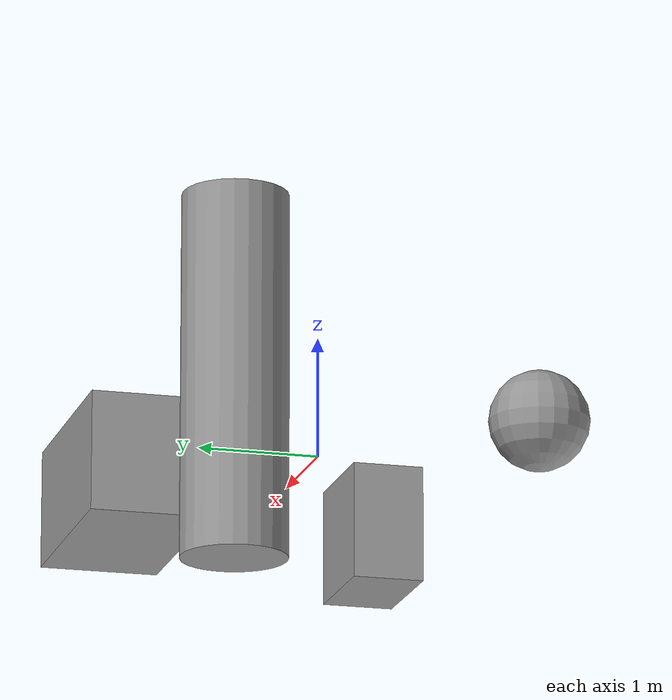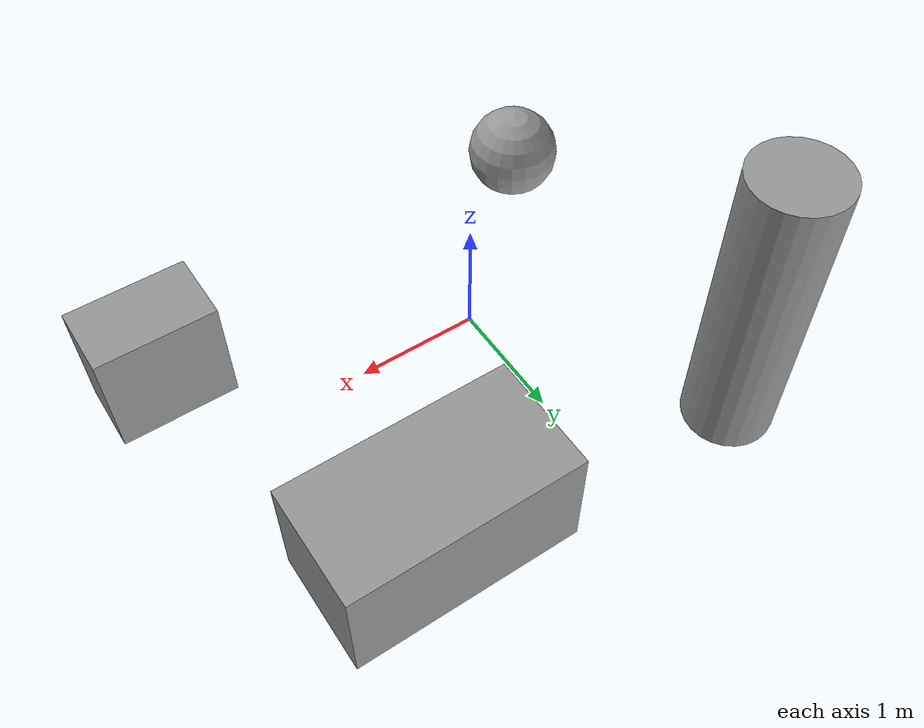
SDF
<?xml version='1.0'?>
<sdf version='1.7'>
  <model name='meu_mapa2'>
    <link name='link_0'>
      <inertial>
        <mass>1.91507</mass>
        <inertia>
          <ixx>0.319178</ixx>
          <ixy>0</ixy>
          <ixz>0</ixz>
          <iyy>0.74488</iyy>
          <iyz>0</iyz>
          <izz>0.74488</izz>
        </inertia>
        <pose>0 0 0 0 -0 0</pose>
      </inertial>
      <pose>1.21596 1.32594 0 0 -0 0</pose>
      <visual name='visual'>
        <pose>0 0 0 0 -0 0</pose>
        <geometry>
          <box>
            <size>1.91507 1 1</size>
          </box>
        </geometry>
        <material>
          <lighting>1</lighting>
          <script>
            <uri>file://media/materials/scripts/gazebo.material</uri>
            <name>Gazebo/Grey</name>
          </script>
          <shader type='pixel'/>
        </material>
        <transparency>0</transparency>
        <cast_shadows>1</cast_shadows>
      </visual>
      <collision name='collision'>
        <laser_retro>0</laser_retro>
        <max_contacts>10</max_contacts>
        <pose>0 0 0 0 -0 0</pose>
        <geometry>
          <box>
            <size>1.91507 1 1</size>
          </box>
        </geometry>
        <surface>
          <friction>
            <ode>
              <mu>1</mu>
              <mu2>1</mu2>
              <fdir1>0 0 0</fdir1>
              <slip1>0</slip1>
              <slip2>0</slip2>
            </ode>
            <torsional>
              <coefficient>1</coefficient>
              <patch_radius>0</patch_radius>
              <surface_radius>0</surface_radius>
              <use_patch_radius>1</use_patch_radius>
              <ode>
                <slip>0</slip>
              </ode>
            </torsional>
          </friction>
          <bounce>
            <restitution_coefficient>0</restitution_coefficient>
            <threshold>1e+06</threshold>
          </bounce>
          <contact>
            <collide_without_contact>0</collide_without_contact>
            <collide_without_contact_bitmask>1</collide_without_contact_bitmask>
            <collide_bitmask>1</collide_bitmask>
            <ode>
              <soft_cfm>0</soft_cfm>
              <soft_erp>0.2</soft_erp>
              <kp>1e+13</kp>
              <kd>1</kd>
              <max_vel>0.01</max_vel>
              <min_depth>0</min_depth>
            </ode>
            <bullet>
              <split_impulse>1</split_impulse>
              <split_impulse_penetration_threshold>-0.01</split_impulse_penetration_threshold>
              <soft_cfm>0</soft_cfm>
              <soft_erp>0.2</soft_erp>
              <kp>1e+13</kp>
              <kd>1</kd>
            </bullet>
          </contact>
        </surface>
      </collision>
    </link>
    <link name='link_1'>
      <inertial>
        <mass>2.07655</mass>
        <inertia>
          <ixx>1.57158</ixx>
          <ixy>0</ixy>
          <ixz>0</ixz>
          <iyy>1.57158</iyy>
          <iyz>0</iyz>
          <izz>0.184352</izz>
        </inertia>
        <pose>0 0 0 0 -0 0</pose>
      </inertial>
      <pose>-2.0404 1.2097 0 0 -0 0</pose>
      <visual name='visual'>
        <pose>0 0 0 0 -0 0</pose>
        <geometry>
          <cylinder>
            <radius>0.421374</radius>
            <length>2.9239</length>
          </cylinder>
        </geometry>
        <material>
          <lighting>1</lighting>
          <script>
            <uri>file://media/materials/scripts/gazebo.material</uri>
            <name>Gazebo/Grey</name>
          </script>
          <shader type='pixel'/>
        </material>
        <transparency>0</transparency>
        <cast_shadows>1</cast_shadows>
      </visual>
      <collision name='collision'>
        <laser_retro>0</laser_retro>
        <max_contacts>10</max_contacts>
        <pose>0 0 0 0 -0 0</pose>
        <geometry>
          <cylinder>
            <radius>0.421374</radius>
            <length>2.9239</length>
          </cylinder>
        </geometry>
        <surface>
          <friction>
            <ode>
              <mu>1</mu>
              <mu2>1</mu2>
              <fdir1>0 0 0</fdir1>
              <slip1>0</slip1>
              <slip2>0</slip2>
            </ode>
            <torsional>
              <coefficient>1</coefficient>
              <patch_radius>0</patch_radius>
              <surface_radius>0</surface_radius>
              <use_patch_radius>1</use_patch_radius>
              <ode>
                <slip>0</slip>
              </ode>
            </torsional>
          </friction>
          <bounce>
            <restitution_coefficient>0</restitution_coefficient>
            <threshold>1e+06</threshold>
          </bounce>
          <contact>
            <collide_without_contact>0</collide_without_contact>
            <collide_without_contact_bitmask>1</collide_without_contact_bitmask>
            <collide_bitmask>1</collide_bitmask>
            <ode>
              <soft_cfm>0</soft_cfm>
              <soft_erp>0.2</soft_erp>
              <kp>1e+13</kp>
              <kd>1</kd>
              <max_vel>0.01</max_vel>
              <min_depth>0</min_depth>
            </ode>
            <bullet>
              <split_impulse>1</split_impulse>
              <split_impulse_penetration_threshold>-0.01</split_impulse_penetration_threshold>
              <soft_cfm>0</soft_cfm>
              <soft_erp>0.2</soft_erp>
              <kp>1e+13</kp>
              <kd>1</kd>
            </bullet>
          </contact>
        </surface>
      </collision>
    </link>
    <link name='link_2'>
      <inertial>
        <mass>0.537599</mass>
        <inertia>
          <ixx>0.0355436</ixx>
          <ixy>0</ixy>
          <ixz>0</ixz>
          <iyy>0.0355436</iyy>
          <iyz>0</iyz>
          <izz>0.0355436</izz>
        </inertia>
        <pose>0 0 0 0 -0 0</pose>
      </inertial>
      <pose>-1.44862 -1.436 0 0 -0 0</pose>
      <visual name='visual'>
        <pose>0 0 0 0 -0 0</pose>
        <geometry>
          <sphere>
            <radius>0.406557</radius>
          </sphere>
        </geometry>
        <material>
          <lighting>1</lighting>
          <script>
            <uri>file://media/materials/scripts/gazebo.material</uri>
            <name>Gazebo/Grey</name>
          </script>
          <shader type='pixel'/>
        </material>
        <transparency>0</transparency>
        <cast_shadows>1</cast_shadows>
      </visual>
      <collision name='collision'>
        <laser_retro>0</laser_retro>
        <max_contacts>10</max_contacts>
        <pose>0 0 0 0 -0 0</pose>
        <geometry>
          <sphere>
            <radius>0.406557</radius>
          </sphere>
        </geometry>
        <surface>
          <friction>
            <ode>
              <mu>1</mu>
              <mu2>1</mu2>
              <fdir1>0 0 0</fdir1>
              <slip1>0</slip1>
              <slip2>0</slip2>
            </ode>
            <torsional>
              <coefficient>1</coefficient>
              <patch_radius>0</patch_radius>
              <surface_radius>0</surface_radius>
              <use_patch_radius>1</use_patch_radius>
              <ode>
                <slip>0</slip>
              </ode>
            </torsional>
          </friction>
          <bounce>
            <restitution_coefficient>0</restitution_coefficient>
            <threshold>1e+06</threshold>
          </bounce>
          <contact>
            <collide_without_contact>0</collide_without_contact>
            <collide_without_contact_bitmask>1</collide_without_contact_bitmask>
            <collide_bitmask>1</collide_bitmask>
            <ode>
              <soft_cfm>0</soft_cfm>
              <soft_erp>0.2</soft_erp>
              <kp>1e+13</kp>
              <kd>1</kd>
              <max_vel>0.01</max_vel>
              <min_depth>0</min_depth>
            </ode>
            <bullet>
              <split_impulse>1</split_impulse>
              <split_impulse_penetration_threshold>-0.01</split_impulse_penetration_threshold>
              <soft_cfm>0</soft_cfm>
              <soft_erp>0.2</soft_erp>
              <kp>1e+13</kp>
              <kd>1</kd>
            </bullet>
          </contact>
        </surface>
      </collision>
    </link>
    <link name='link_3'>
      <inertial>
        <mass>0.610298</mass>
        <inertia>
          <ixx>0.0698011</ixx>
          <ixy>0</ixy>
          <ixz>0</ixz>
          <iyy>0.101716</iyy>
          <iyz>0</iyz>
          <izz>0.0698011</izz>
        </inertia>
        <pose>0 0 0 0 -0 0</pose>
      </inertial>
      <pose>2.27307 -1.09964 0 0 -0 0</pose>
      <visual name='visual'>
        <pose>0 0 0 0 -0 0</pose>
        <geometry>
          <box>
            <size>1 0.610299 1</size>
          </box>
        </geometry>
        <material>
          <lighting>1</lighting>
          <script>
            <uri>file://media/materials/scripts/gazebo.material</uri>
            <name>Gazebo/Grey</name>
          </script>
          <shader type='pixel'/>
        </material>
        <transparency>0</transparency>
        <cast_shadows>1</cast_shadows>
      </visual>
      <collision name='collision'>
        <laser_retro>0</laser_retro>
        <max_contacts>10</max_contacts>
        <pose>0 0 0 0 -0 0</pose>
        <geometry>
          <box>
            <size>1 0.610299 1</size>
          </box>
        </geometry>
        <surface>
          <friction>
            <ode>
              <mu>1</mu>
              <mu2>1</mu2>
              <fdir1>0 0 0</fdir1>
              <slip1>0</slip1>
              <slip2>0</slip2>
            </ode>
            <torsional>
              <coefficient>1</coefficient>
              <patch_radius>0</patch_radius>
              <surface_radius>0</surface_radius>
              <use_patch_radius>1</use_patch_radius>
              <ode>
                <slip>0</slip>
              </ode>
            </torsional>
          </friction>
          <bounce>
            <restitution_coefficient>0</restitution_coefficient>
            <threshold>1e+06</threshold>
          </bounce>
          <contact>
            <collide_without_contact>0</collide_without_contact>
            <collide_without_contact_bitmask>1</collide_without_contact_bitmask>
            <collide_bitmask>1</collide_bitmask>
            <ode>
              <soft_cfm>0</soft_cfm>
              <soft_erp>0.2</soft_erp>
              <kp>1e+13</kp>
              <kd>1</kd>
              <max_vel>0.01</max_vel>
              <min_depth>0</min_depth>
            </ode>
            <bullet>
              <split_impulse>1</split_impulse>
              <split_impulse_penetration_threshold>-0.01</split_impulse_penetration_threshold>
              <soft_cfm>0</soft_cfm>
              <soft_erp>0.2</soft_erp>
              <kp>1e+13</kp>
              <kd>1</kd>
            </bullet>
          </contact>
        </surface>
      </collision>
    </link>
    <static>0</static>
    <allow_auto_disable>1</allow_auto_disable>
  </model>
</sdf>
